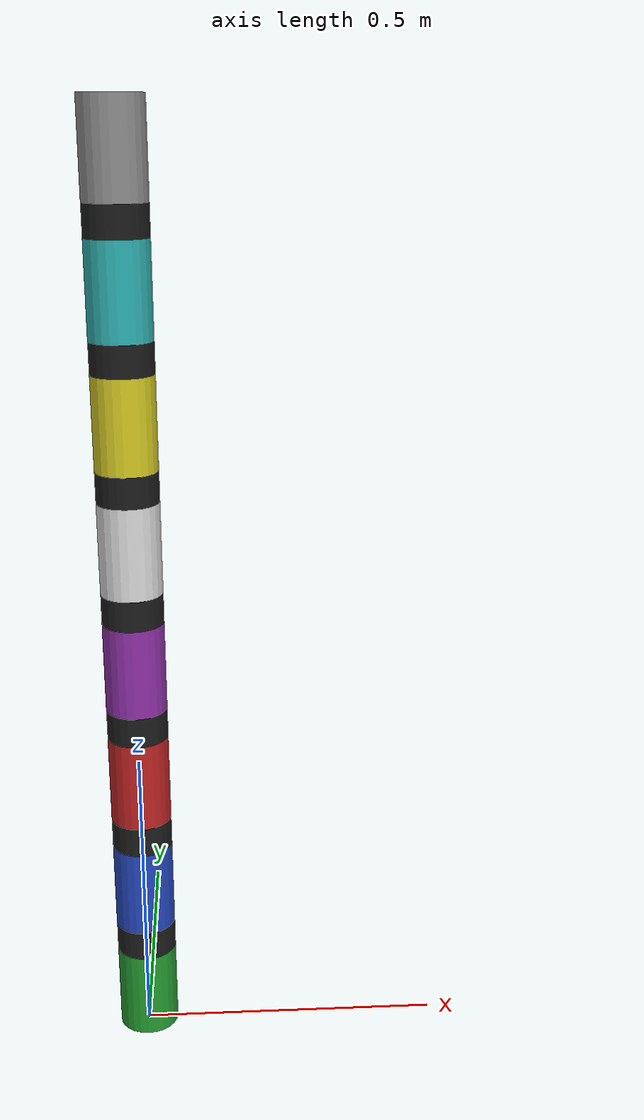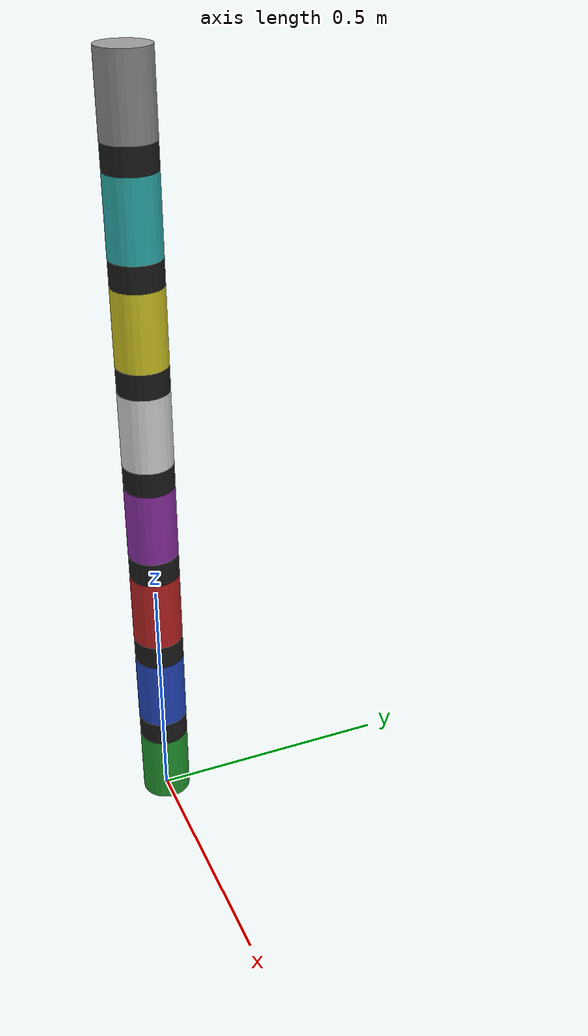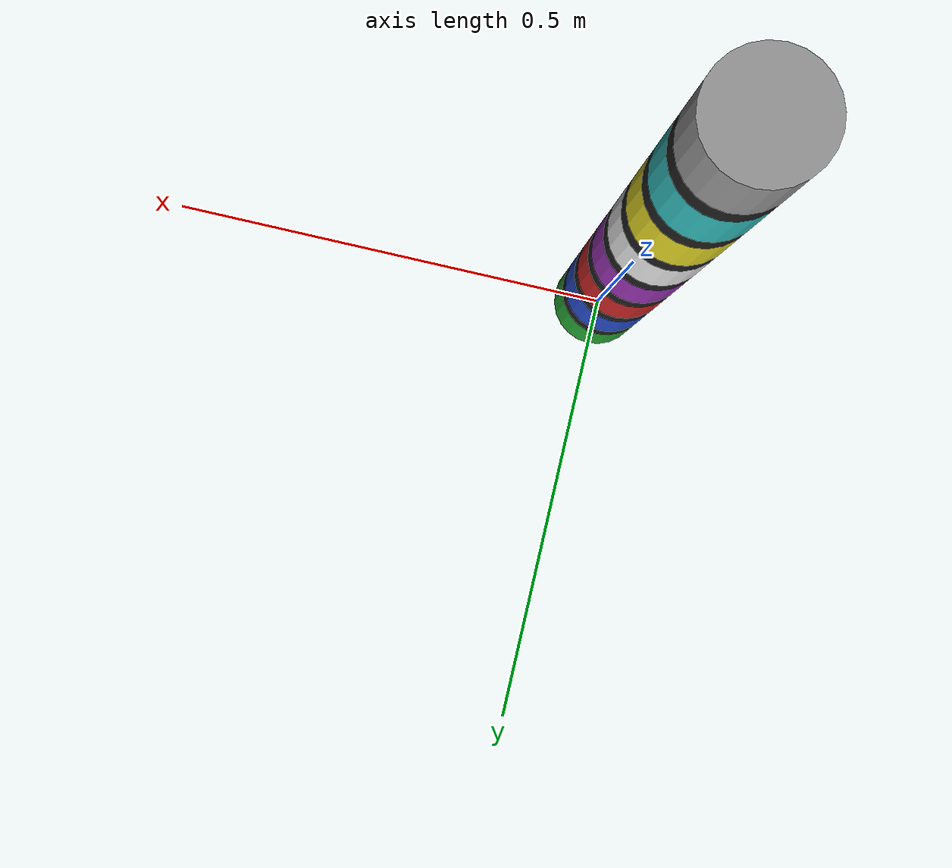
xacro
<?xml version="1.0"?>
<robot xmlns:xacro="http://www.ros.org/wiki/xacro" name="snake">

    <!-- MACROS -->

    <xacro:macro name="body_link" params="base_name parent_name colour">

        <link name="${base_name}_aux">
            <inertial>
                <origin xyz="0 0 0.025" rpy="0 0 0"/>
                <mass value="0.1" />
                <inertia ixx="0.00025" ixy="0.0" ixz="0.0" iyy="0.00025" iyz="0.0" izz="0.000125"/>
            </inertial>
            <collision>
                <origin xyz="0 0 0.025" rpy="0 0 0"/>
                <geometry>
                    <cylinder radius="0.05" length="0.05"/>
                </geometry>
            </collision>
            <visual>
                <origin xyz="0 0 0.025" rpy="0 0 0"/>
                <geometry>
                    <cylinder radius="0.05" length="0.05"/>
                </geometry>
            </visual>
    	</link>

    	<gazebo reference="${base_name}_aux">
            <kp>1000000000.0</kp>
            <kd>1000000000.0</kd>
            <mu1>10.0</mu1>
            <mu2>10.0</mu2>
            <material>Gazebo/Black</material>
            <self_collide>1</self_collide>
        </gazebo>

        <link name="${base_name}">
     	    <inertial>
                <origin xyz="0 0 0.075" rpy="0 0 0"/>
                <mass value="0.1" />
                <inertia ixx="0.00025" ixy="0.0" ixz="0.0" iyy="0.00025" iyz="0.0" izz="0.000125"/>
            </inertial>
            <collision>
                <origin xyz="0 0 0.075" rpy="0 0 0"/>
                <geometry>
                    <cylinder radius="0.05" length="0.15"/>
                </geometry>
            </collision>
            <visual>
                <origin xyz="0 0 0.075" rpy="0 0 0"/>
                <geometry>
                    <cylinder radius="0.05" length="0.15"/>
                </geometry>
            </visual>
    	</link>

    	<gazebo reference="${base_name}">
            <kp>1000000000.0</kp>
            <kd>1000000000.0</kd>
            <mu1>10.0</mu1>
            <mu2>10.0</mu2>
            <material>Gazebo/${colour}</material>
            <self_collide>1</self_collide>
        </gazebo>

        <!-- We add to the Origin displacement a margin for flex due to self colisions for parent_name and base_name-->
        <joint name="${base_name}_aux_joint" type="revolute">
            <parent link="${parent_name}"/>
        	<child link="${base_name}_aux"/>
            <origin xyz="0 0 0.15" rpy="0 0 0"/>
            <limit lower="-1.5708" upper="1.5708" effort="100.0" velocity="1.0"/>
            <axis xyz="1 0 0"/>
    	</joint>

        <joint name="${base_name}_joint" type="revolute">
    	    <parent link="${base_name}_aux"/>
        	<child link="${base_name}"/>
            <origin xyz="0 0 0.05" rpy="0 0 0"/>
            <limit lower="-1.5708" upper="1.5708" effort="100.0" velocity="1.0"/>
            <axis xyz="0 1 0"/>
    	</joint>

    </xacro:macro>
	<!-- * * * Link Definitions * * * -->

    <link name="base_link">
 	    <inertial>
            <origin xyz="0 0 0.075" rpy="0 0 0"/>
            <mass value="0.1" />
            <inertia ixx="0.00025" ixy="0.0" ixz="0.0" iyy="0.00025" iyz="0.0" izz="0.000125"/>
        </inertial>
        <collision>
            <origin xyz="0 0 0.075" rpy="0 0 0"/>
            <geometry>
                <cylinder radius="0.05" length="0.15"/>
            </geometry>
        </collision>
        <visual>
            <origin xyz="0 0 0.075" rpy="0 0 0"/>
            <geometry>
                <cylinder radius="0.05" length="0.15"/>
            </geometry>
        </visual>
	</link>

    <gazebo reference="base_link">
        <kp>100000000000000.0</kp>
        <kd>100000000000000.0</kd>
        <mu1>10.0</mu1>
        <mu2>10.0</mu2>
        <material>Gazebo/Green</material>
        <self_collide>1</self_collide>
    </gazebo>

    <xacro:body_link base_name="snake_body_1" parent_name="base_link" colour="Blue"/>
    <xacro:body_link base_name="snake_body_2" parent_name="snake_body_1" colour="Red"/>
    <xacro:body_link base_name="snake_body_3" parent_name="snake_body_2" colour="Purple"/>
    <xacro:body_link base_name="snake_body_4" parent_name="snake_body_3" colour="White"/>
    <xacro:body_link base_name="snake_body_5" parent_name="snake_body_4" colour="Yellow"/>
    <xacro:body_link base_name="snake_body_6" parent_name="snake_body_5" colour="Turquoise"/>
    <xacro:body_link base_name="snake_body_7" parent_name="snake_body_6" colour="Grey"/>

</robot>
